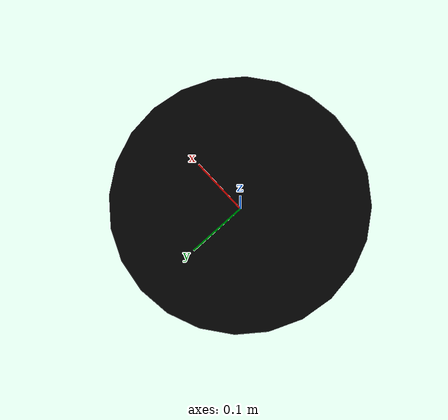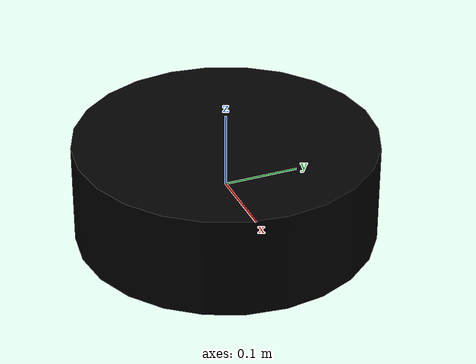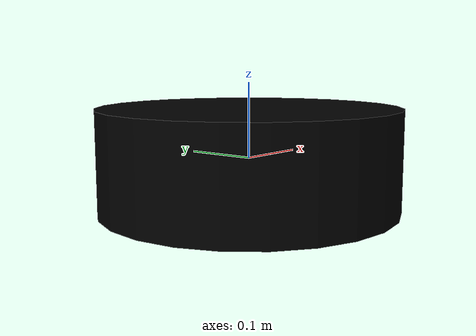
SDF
<?xml version="1.0" ?>
<sdf version="1.10">
    <model name="lidar_sensor_model">

            <link name="lidar">
                <pose>0 0 0 0 0 0</pose>
                <visual name='lidar visual'>
                    <pose>0 0 0 0 0 0</pose>
                    <geometry>
                        <cylinder>
                            <radius>0.2</radius>
                            <length>0.13538975482266932</length>
                        </cylinder>
                    </geometry>
                    <material>
                        <ambient>0 0 0 1</ambient>
                        <diffuse>0 0 0 1</diffuse>
                        <specular>0.1 0.1 0.1 1</specular>
                        <emissive>0 0 0 1</emissive>
                    </material>
                </visual>
                <collision name='lidar collision'>
                    <pose>0 0 0 0 0 0</pose>
                    <geometry>
                        <cylinder>
                            <radius>0.2</radius>
                            <length>0.13538975482266932</length>
                        </cylinder>
                    </geometry>
                </collision>
                <inertial>
                    <mass>1</mass>
                    <inertia>
                        <ixx>0.3333333333333333</ixx>
                        <ixy>0</ixy>
                        <ixz>0</ixz>
                        <iyy>0.5</iyy>
                        <iyz>0</iyz>
                        <izz>0.3333333333333333</izz>
                    </inertia>
                </inertial>
                <sensor name='gpu_lidar' type='gpu_lidar'>"
                    <pose relative_to='lidar'>0 0 0 0 0 0</pose>
                    <topic>lidar</topic>
                    <update_rate>10</update_rate>
                    <ray>
                        <scan>
                            <horizontal>
                                <samples>640</samples>
                                <resolution>1</resolution>
                                <min_angle>-1.396263</min_angle>
                                <max_angle>1.396263</max_angle>
                            </horizontal>
                            <vertical>
                                <samples>1</samples>
                                <resolution>0.01</resolution>
                                <min_angle>0</min_angle>
                                <max_angle>0</max_angle>
                            </vertical>
                        </scan>
                        <range>
                            <min>0.08</min>
                            <max>10.0</max>
                            <resolution>0.01</resolution>
                        </range>
                    </ray>
                    <always_on>1</always_on>
                    <visualize>true</visualize>
                </sensor>
            </link>

    </model>

</sdf>
